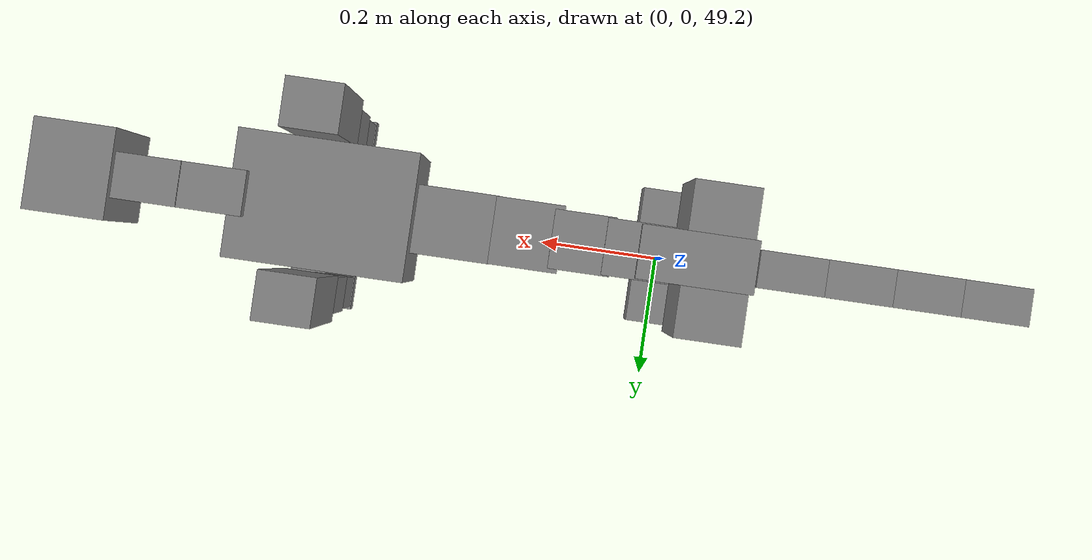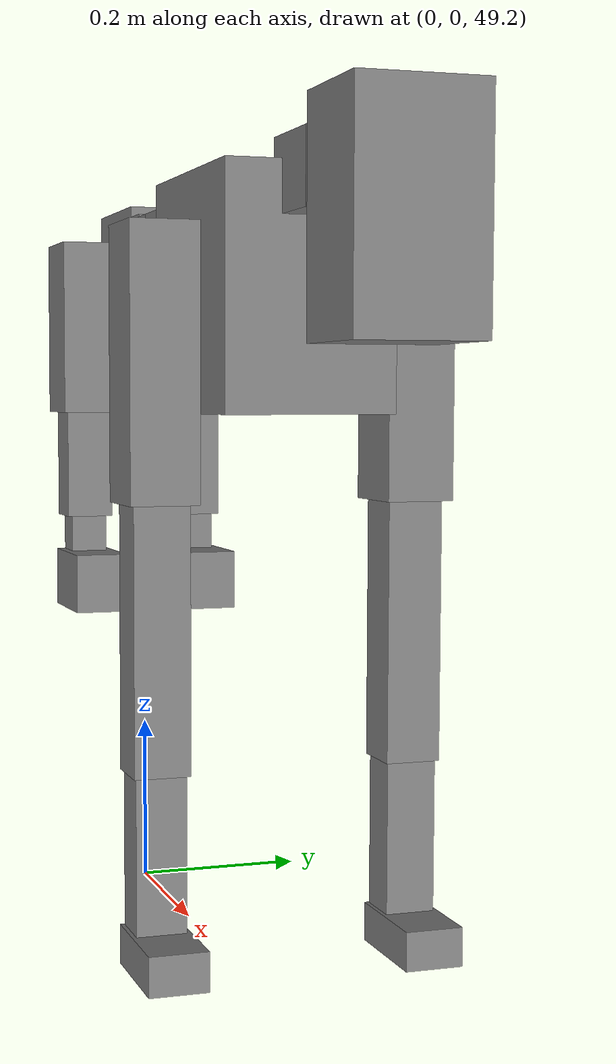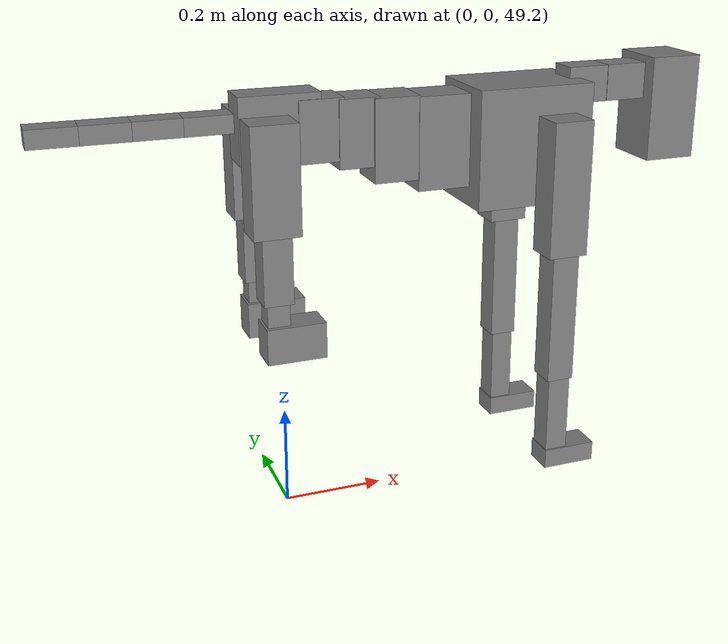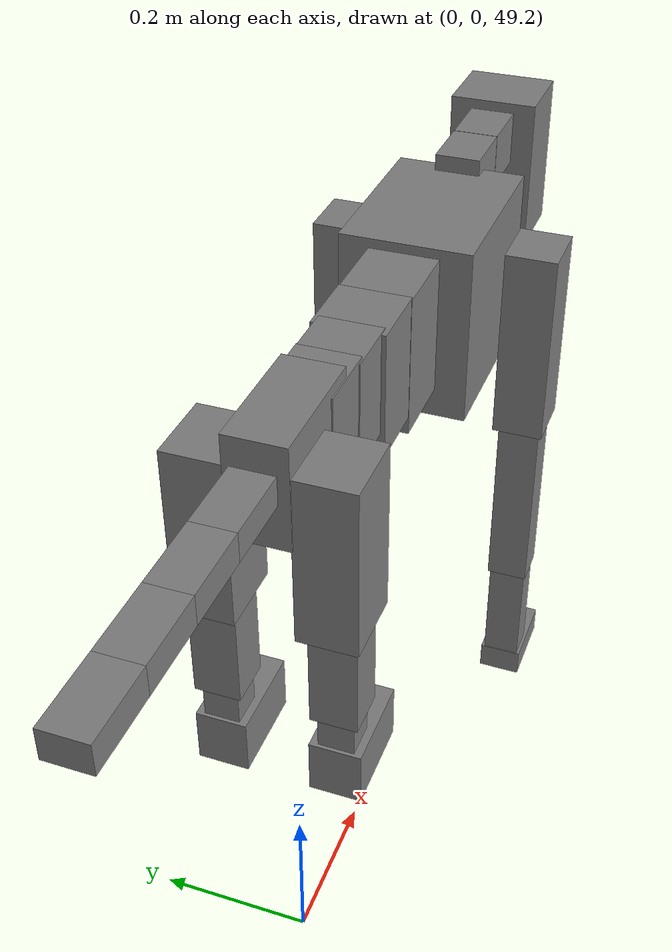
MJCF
<mujoco model="dog">

    <default>
        <joint armature="0.02" stiffness="1" damping="0.2" limited="true"/>
        <geom condim="3" friction="1 0.05 0.05" margin="0.01"/>
        <motor ctrllimited="true" ctrlrange="-1.0 1.0" forcelimited="true" gear="50"/>
    </default>

    <compiler inertiafromgeom="true" angle="radian"/>

    <option timestep="0.016" iterations="50" tolerance="1e-10" solver="Newton" jacobian="dense" cone="pyramidal"/>

    <size nconmax="20000" njmax="60000" nstack="5000000"/>
    <visual>
        <map force="0.1" zfar="30"/>
        <rgba haze="0.15 0.25 0.35 1"/>
        <quality shadowsize="2048"/>
        <global offwidth="800" offheight="800"/>
    </visual>

    <asset>
        <texture type="skybox" builtin="gradient" rgb1="0.3 0.5 0.7" rgb2="0 0 0" width="512" height="512"/>
        <texture name="texplane" type="2d" builtin="checker" rgb1=".2 .3 .4" rgb2=".1 0.15 0.2" width="512" height="512"
                 mark="cross" markrgb=".8 .8 .8"/>
        <texture name="texgeom" type="cube" builtin="flat" mark="cross" width="127" height="1278" rgb1="0.8 0.6 0.4"
                 rgb2="0.8 0.6 0.4" markrgb="1 1 1" random="0.01"/>

        <material name="matplane" reflectance="0.3" texture="texplane" texrepeat="1 1" texuniform="true"/>
        <material name="matgeom" texture="texgeom" texuniform="true" rgba="0.8 0.6 .4 1"/>
    </asset>

    <worldbody>
        <geom name="floor" pos="0 0 0" size="0 0 .25" type="plane" material="matplane" condim="3"/>

        <light directional="false" diffuse=".2 .2 .2" specular="0 0 0" pos="0 0 5" dir="0 0 -1" castshadow="false"/>
        <light mode="targetbodycom" target="torso" directional="false" diffuse=".8 .8 .8" specular="0.3 0.3 0.3"
               pos="0 0 4.0" dir="0 0 -1"/>

        <body name="root" pos="0 0 50">
            <freejoint name="root_1"/>
            <geom type="box" pos="0 0 -0.02" size="0.0774  0.0358  0.063" density="2030"/>

            <body name="spine1" pos="0.054 0 0">
                <joint name="spine1_y" axis="0 1 0" range="0 0.7" limited="true"/>
                <geom type="box" pos="0.02375 0 -0.03" size="0.04375  0.0375  0.05985" density="2030"/>

                <body name="spine2" pos="0.0612 0 0">
                    <joint name="spine2_y" axis="0 1 0" range="-0.15 0.15" limited="true"/>
                    <geom type="box" pos="0.03555  0  -0.04" size="0.04055  0.039  0.06615" density="2030"/>

                    <body name="spine3" pos="0.0730 0 0">
                        <joint name="spine3_y" axis="0 1 0" range="-0.15 0.15" limited="true"/>
                        <geom type="box" pos="0.03555  0  -0.057" size="0.04555  0.0445  0.081" density="2030"/>

                        <body name="spine4" pos="0.0780 0 0">
                            <joint name="spine4_y" axis="0 1 0" range="-0.15 0.15" limited="true"/>
                            <geom type="box" pos="0.05265  0  -0.07" size="0.05265  0.045  0.09135" density="2030"/>

                            <body name="torso" pos="0.1082 0 0">
                                <joint name="torso_y" axis="0 1 0" range="-0.15 0.15" limited="true"/>
                                <geom type="box" pos="0.11925  0  -0.085" size="0.11925  0.085  0.11745"
                                      density="2030"/>

                                <body name="neck1" pos="0.2160  0   0.0180">
                                    <joint name="neck1_y" axis="0 1 0" range="-1.2  -1" limited="true"/>
                                    <geom type="box" pos="0.0423  0  0" size="0.0423  0.03  0.036" density="2325"/>

                                    <body name="neck2" pos="0.0853  0  0">
                                        <joint name="neck2_y" axis="0 1 0" range="0.1  0" limited="true"/>
                                        <geom type="box" pos="0.0423  0  0" size="0.0423  0.03  0.036" density="2325"/>

                                        <body name="head" pos="0.0853  0  0">
                                            <joint name="head_y" axis="0 1 0" range="-0.3  -0.2" limited="true"/>
                                            <geom type="box" pos="0.0531  0  -0.055" size="0.0531  0.06  0.1044"
                                                  density="4030"/>

                                        </body>
                                    </body>
                                </body>

                                <body name="front_shoulder" pos="0.156  0   -0.0480">
                                    <joint name="front_shoulder_y" axis="0 1 0" range="-1 1.5" limited="true"/>
                                    <geom type="box" pos="0 0.13 -0.1068" size="0.0401  0.0343  0.1335" density="1158"/>
                                    <geom type="box" pos="0 -0.13 -0.1068" size="0.0401  0.0343  0.1335"
                                          density="1158"/>

                                    <body name="front_elbow" pos="0  0  -0.2137">
                                        <joint name="front_elbow_y" axis="0 1 0" range="-2 0" limited="true"/>
                                        <geom type="box" pos="0 0.13 -0.1445" size="0.0275  0.0281  0.1445"
                                              density="1081"/>
                                        <geom type="box" pos="0 -0.13 -0.1445" size="0.0275  0.0281  0.1445"
                                              density="1081"/>

                                        <body name="front_wrist" pos="0  0  -0.2889">
                                            <joint name="front_wrist_y" axis="0 1 0" range="-0.2 0" limited="true"/>
                                            <geom type="box" pos="0 0.13 -0.0852" size="0.0230  0.0255  0.0984"
                                                  density="1664"/>
                                            <geom type="box" pos="0 -0.13 -0.0852" size="0.0230  0.0255  0.0984"
                                                  density="1664"/>

                                            <body name="front_finger_end" pos="0  0  -0.1704">
                                                <joint name="front_finger_y" axis="0 1 0" range="-0.4 1"
                                                       limited="true"/>
                                                <geom type="box" pos="0.0298  0.13  -0.0048"
                                                      size="0.0546  0.0298  0.0198" density="1515"/>
                                                <geom type="box" pos="0.0298  -0.13  -0.0048"
                                                      size="0.0546  0.0298  0.0198" density="1515"/>

                                            </body>

                                        </body>
                                    </body>
                                </body>

                            </body>
                        </body>
                    </body>
                </body>
            </body>

            <body name="back_hip" pos="-0.03 0 -0.018">
                <joint name="back_hip_y" axis="0 1 0" range="-1.5 0.3" limited="true"/>
                <geom type="box" pos="0 0.07 -0.0819" size="0.0453  0.0355  0.1047" density="1154"/>
                <geom type="box" pos="0 -0.07 -0.0819" size="0.0453  0.0355  0.1047" density="1154"/>

                <body name="back_knee" pos="0  0  -0.1637">
                    <joint name="back_knee_y" axis="0 1 0" range="0 2.8" limited="true"/>
                    <geom type="box" pos="0 0.07 -0.0690" size="0.0286  0.0282  0.0846" density="1227"/>
                    <geom type="box" pos="0 -0.07 -0.0690" size="0.0286  0.0282  0.0846" density="1227"/>

                    <body name="back_ankle" pos="0  0  -0.1381">
                        <joint name="back_ankle_y" axis="0 1 0" range="-2.2 0" limited="true"/>
                        <geom type="box" pos="0 0.07 -0.0372" size="0.0217  0.0217  0.0485" density="1284"/>
                        <geom type="box" pos="0 -0.07 -0.0372" size="0.0217  0.0217  0.0485" density="1284"/>

                        <body name="back_toe_end" pos="0  0  -0.0744">
                            <joint name="back_toe_y" axis="0 1 0" range="-0.4 1" limited="true"/>
                            <geom type="box" pos="0.0314  0.07  -0.0205" size="0.0576  0.0314  0.0355" density="1515"/>
                            <geom type="box" pos="0.0314  -0.07  -0.0205" size="0.0576  0.0314  0.0355" density="1515"/>

                        </body>
                    </body>
                </body>
            </body>

            <body name="tail1" pos="-0.074 0 -0.006">
                <joint name="tail1_y" axis="0 1 0" range="-0.2 0.2" limited="true"/>
                <geom type="box" pos="-0.0536  0  0" size="0.045  0.025  0.0175" density="1587"/>

                <body name="tail2" pos="-0.09 0 0">
                    <joint name="tail2_y" axis="0 1 0" range="-0.2 0.2" limited="true"/>
                    <geom type="box" pos="-0.0536  0  0" size="0.045  0.025  0.0175" density="1587"/>

                    <body name="tail3" pos="-0.09 0 0">
                        <joint name="tail3_y" axis="0 1 0" range="-0.2 0.2" limited="true"/>
                        <geom type="box" pos="-0.0536  0  0" size="0.045  0.025  0.0175" density="1587"/>

                        <body name="tail4" pos="-0.09 0 0">
                            <joint name="tail4_y" axis="0 1 0" range="-0.2 0.2" limited="true"/>
                            <geom type="box" pos="-0.0536  0  0" size="0.045  0.025  0.0175" density="1587"/>

                        </body>
                    </body>
                </body>
            </body>
        </body>
    </worldbody>

    <actuator>
        <motor joint="spine1_y" forcerange="-150 150     "/>
        <motor joint="spine2_y" forcerange="-150 150     "/>
        <motor joint="spine3_y" forcerange="-150 150     "/>
        <motor joint="spine4_y" forcerange="-150 150     "/>
        <motor joint="torso_y" forcerange="-150 150     "/>
        <motor joint="neck1_y" forcerange="-100 100       "/>
        <motor joint="neck2_y" forcerange="-100 100       "/>
        <motor joint="head_y" forcerange="-150 150       "/>
        <motor joint="front_shoulder_y" forcerange="-197.28 131.45"/>
        <motor joint="front_elbow_y" forcerange="-158.34 146.15"/>
        <motor joint="front_wrist_y" forcerange="-144.78 59.60"/>
        <motor joint="front_finger_y" forcerange="-28.81 89.90"/>
        <motor joint="back_hip_y" forcerange="-332.86 340.58"/>
        <motor joint="back_knee_y" forcerange="-338.15 271.90"/>
        <motor joint="back_angle_y" forcerange="-100.71 147.18"/>
        <motor joint="back_toe_y" forcerange="-77.53 93.84"/>
        <motor joint="tail1_y" forcerange="-50 50     "/>
        <motor joint="tail2_y" forcerange="-50 50     "/>
        <motor joint="tail3_y" forcerange="-50 50     "/>
        <motor joint="tail4_y" forcerange="-50 50     "/>
    </actuator>
</mujoco>
